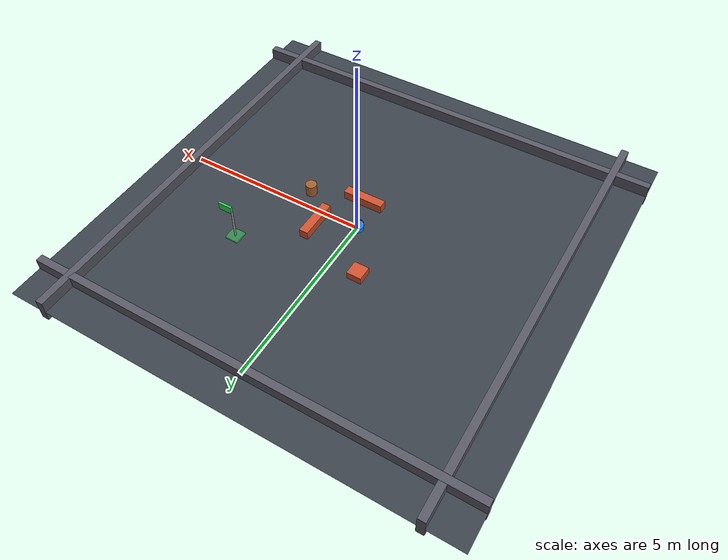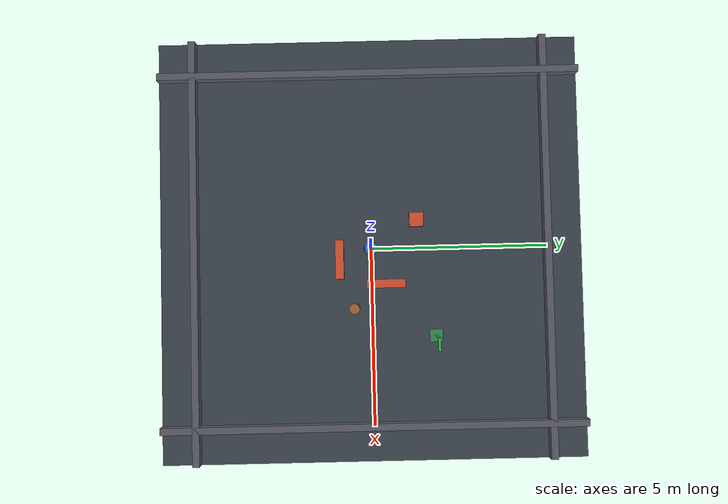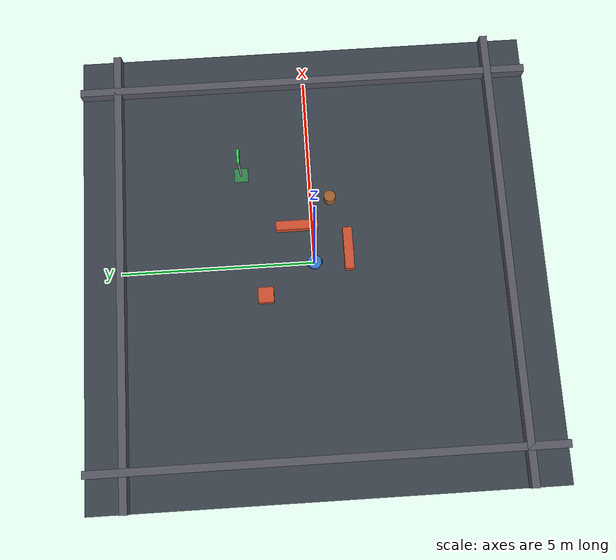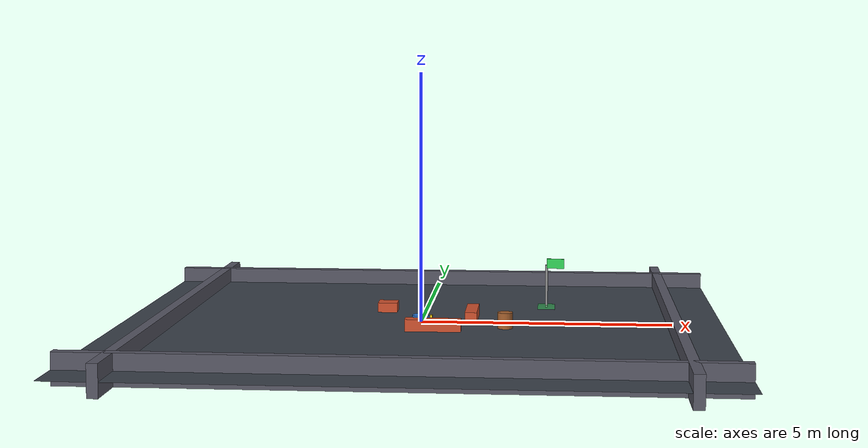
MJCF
<mujoco model="nav_world">

    <compiler angle="radian"/>

    <visual>
        <headlight diffuse="0.6 0.6 0.6" ambient="0.4 0.4 0.4" specular="0 0 0"/>
        <rgba haze="0.1 0.15 0.2 1"/>
        <global azimuth="150" elevation="-25"/>
    </visual>

    <asset>
        <texture type="skybox" builtin="gradient" rgb1="0.4 0.55 0.7" rgb2="0.05 0.05 0.1"
                 width="512" height="512"/>
        <texture name="texfloor" type="2d" builtin="checker"
                 rgb1="0.28 0.32 0.36" rgb2="0.18 0.20 0.24"
                 width="512" height="512" mark="cross" markrgb="0.6 0.6 0.6"/>
        <material name="matfloor" texture="texfloor" texrepeat="6 6" reflectance="0.15"/>
    </asset>

    <worldbody>
        <!-- Lighting -->
        <light name="sun"  pos="0 0 5"   dir="0 0 -1"      directional="true"
               diffuse="0.7 0.7 0.7" specular="0.2 0.2 0.2" castshadow="true"/>
        <light name="fill" pos="-3 -3 4" dir="1 1 -1"      directional="true"
               diffuse="0.3 0.3 0.35" specular="0 0 0"/>

        <!-- Floor -->
        <geom name="floor" type="plane" size="6 6 0.1" material="matfloor"
              condim="3" friction="0.8 0.005 0.0001"/>

        <!-- ── Robot ───────────────────────────────────────────────────────── -->
        <!-- Body   : blue cylinder (r=0.18 m, h=0.14 m)                       -->
        <!-- Heading: yellow rectangular bump on the front face                 -->
        <!-- The freejoint lets set_body_position / set_body_quaternion work.   -->
        <body name="robot" pos="0 0 0.07">
            <freejoint name="robot_freejoint"/>
            <!-- Main chassis -->
            <geom name="chassis" type="cylinder" size="0.18 0.065"
                  rgba="0.18 0.48 0.85 1" condim="3" mass="5"/>
            <!-- Direction indicator (yellow wedge on front) -->
            <geom name="front_marker" type="box" size="0.05 0.025 0.03"
                  pos="0.17 0 0.04" rgba="1.0 0.85 0.1 1" mass="0.01"/>
            <!-- Two side "wheels" (visual only) -->
            <geom name="wheel_l" type="cylinder" size="0.07 0.02"
                  pos="0 0.19 0" quat="0.7071 0.7071 0 0"
                  rgba="0.15 0.15 0.15 1" contype="0" conaffinity="0"/>
            <geom name="wheel_r" type="cylinder" size="0.07 0.02"
                  pos="0 -0.19 0" quat="0.7071 0.7071 0 0"
                  rgba="0.15 0.15 0.15 1" contype="0" conaffinity="0"/>
        </body>

        <!-- ── Goal marker ────────────────────────────────────────────────── -->
        <!-- Green flag at (2.5, 1.8) — robot should navigate here.           -->
        <body name="goal" pos="2.5 1.8 0">
            <geom type="box"      size="0.18 0.18 0.03" pos="0 0 0.03"
                  rgba="0.2 0.85 0.35 0.5"/>
            <geom type="cylinder" size="0.025 0.45"     pos="0 0 0.47"
                  rgba="0.6 0.6 0.6 1"/>
            <geom type="box"      size="0.18 0.03 0.10" pos="0.18 0 0.95"
                  rgba="0.2 0.85 0.35 1"/>
        </body>

        <!-- ── Static obstacles ───────────────────────────────────────────── -->
        <!-- Orange/red boxes — the robot must navigate around these.          -->
        <body name="wall_a" pos="1.0  0.4  0">
            <geom type="box" size="0.12 0.55 0.22" rgba="0.82 0.32 0.18 1"
                  condim="3"/>
        </body>
        <body name="wall_b" pos="0.3 -0.9  0">
            <geom type="box" size="0.55 0.12 0.22" rgba="0.82 0.32 0.18 1"
                  condim="3"/>
        </body>
        <body name="pillar" pos="1.7 -0.5  0">
            <geom type="cylinder" size="0.15 0.30" rgba="0.65 0.38 0.18 1"
                  condim="3"/>
        </body>
        <body name="block"  pos="-0.8 1.3  0">
            <geom type="box" size="0.20 0.20 0.18" rgba="0.82 0.32 0.18 1"
                  condim="3"/>
        </body>

        <!-- ── Boundary walls (keep the robot on screen) ─────────────────── -->
        <body name="border_n" pos="0  5 0">
            <geom type="box" size="6 0.1 0.3" rgba="0.35 0.35 0.4 1"/>
        </body>
        <body name="border_s" pos="0 -5 0">
            <geom type="box" size="6 0.1 0.3" rgba="0.35 0.35 0.4 1"/>
        </body>
        <body name="border_e" pos=" 5 0 0">
            <geom type="box" size="0.1 6 0.3" rgba="0.35 0.35 0.4 1"/>
        </body>
        <body name="border_w" pos="-5 0 0">
            <geom type="box" size="0.1 6 0.3" rgba="0.35 0.35 0.4 1"/>
        </body>

    </worldbody>

</mujoco>
